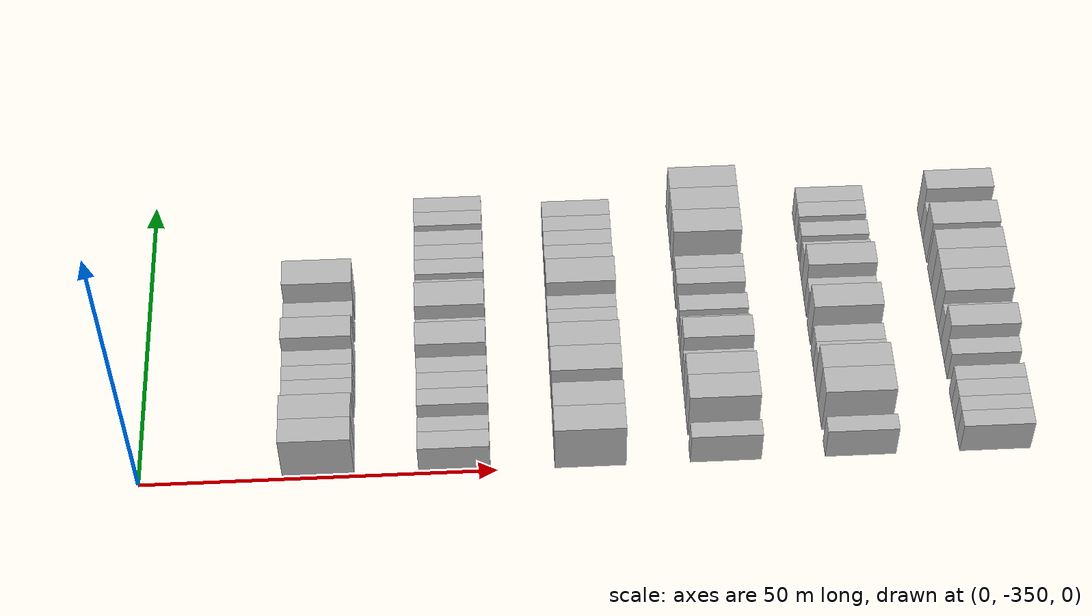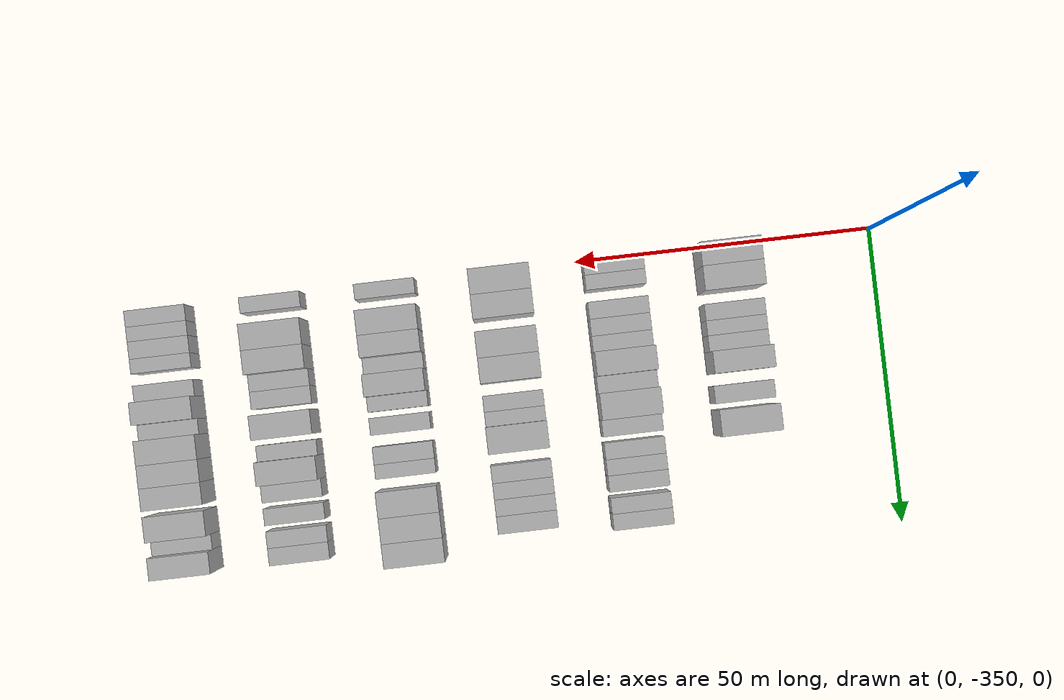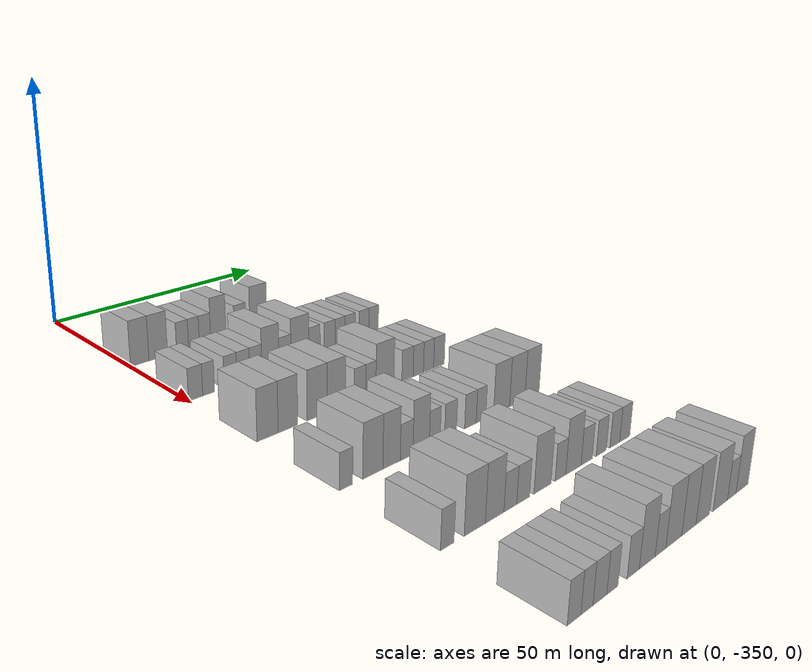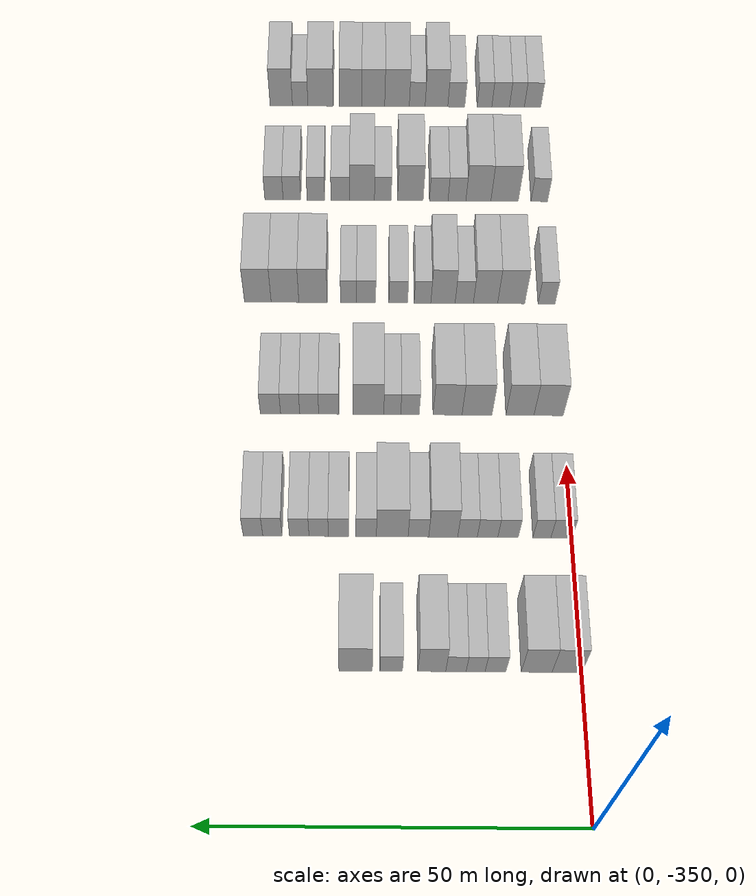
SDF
<sdf version="1.6">
 <world name="default">
  <model name="building_1">
   <static>1</static>
   <pose>25.0000 -348.0444 0 0.000000 0.000000 0.000000</pose>
   <link name="link">
    <pose>0 0 4.50 0 0 0</pose>
    <collision name="collision"><geometry><box><size>10.0000 3.9112 9.0000</size></box></geometry></collision>
    <visual name="visual">
     <cast_shadows>0</cast_shadows>
     <geometry><box><size>10.0000 3.9112 9.0000</size></box></geometry>
     <material>
      <script>
       <uri>model://HANNAS_wall/materials/scripts</uri>
       <uri>model://HANNAS_wall/materials/textures</uri>
       <name>vrc/HANNAS_wall</name>
      </script>
     </material>
    </visual>
   </link>
  </model>
  <model name="building_2">
   <static>1</static>
   <pose>25.0000 -344.0613 0 0.000000 0.000000 0.000000</pose>
   <link name="link">
    <pose>0 0 4.50 0 0 0</pose>
    <collision name="collision"><geometry><box><size>10.0000 4.0550 9.0000</size></box></geometry></collision>
    <visual name="visual">
     <cast_shadows>0</cast_shadows>
     <geometry><box><size>10.0000 4.0550 9.0000</size></box></geometry>
     <material>
      <script>
       <uri>model://HANNAS_wall/materials/scripts</uri>
       <uri>model://HANNAS_wall/materials/textures</uri>
       <name>vrc/HANNAS_wall</name>
      </script>
     </material>
    </visual>
   </link>
  </model>
  <model name="building_3">
   <static>1</static>
   <pose>25.0000 -338.6750 0 0.000000 0.000000 0.000000</pose>
   <link name="link">
    <pose>0 0 3.00 0 0 0</pose>
    <collision name="collision"><geometry><box><size>10.0000 2.7177 6.0000</size></box></geometry></collision>
    <visual name="visual">
     <cast_shadows>0</cast_shadows>
     <geometry><box><size>10.0000 2.7177 6.0000</size></box></geometry>
     <material>
      <script>
       <uri>model://HANNAS_wall/materials/scripts</uri>
       <uri>model://HANNAS_wall/materials/textures</uri>
       <name>vrc/HANNAS_wall</name>
      </script>
     </material>
    </visual>
   </link>
  </model>
  <model name="building_4">
   <static>1</static>
   <pose>25.0000 -336.0749 0 0.000000 0.000000 0.000000</pose>
   <link name="link">
    <pose>0 0 3.00 0 0 0</pose>
    <collision name="collision"><geometry><box><size>10.0000 2.4827 6.0000</size></box></geometry></collision>
    <visual name="visual">
     <cast_shadows>0</cast_shadows>
     <geometry><box><size>10.0000 2.4827 6.0000</size></box></geometry>
     <material>
      <script>
       <uri>model://HANNAS_wall/materials/scripts</uri>
       <uri>model://HANNAS_wall/materials/textures</uri>
       <name>vrc/HANNAS_wall</name>
      </script>
     </material>
    </visual>
   </link>
  </model>
  <model name="building_5">
   <static>1</static>
   <pose>25.0000 -333.5000 0 0.000000 0.000000 0.000000</pose>
   <link name="link">
    <pose>0 0 3.00 0 0 0</pose>
    <collision name="collision"><geometry><box><size>10.0000 2.6671 6.0000</size></box></geometry></collision>
    <visual name="visual">
     <cast_shadows>0</cast_shadows>
     <geometry><box><size>10.0000 2.6671 6.0000</size></box></geometry>
     <material>
      <script>
       <uri>model://HANNAS_wall/materials/scripts</uri>
       <uri>model://HANNAS_wall/materials/textures</uri>
       <name>vrc/HANNAS_wall</name>
      </script>
     </material>
    </visual>
   </link>
  </model>
  <model name="building_6">
   <static>1</static>
   <pose>25.0000 -330.3314 0 0.000000 0.000000 0.000000</pose>
   <link name="link">
    <pose>0 0 4.50 0 0 0</pose>
    <collision name="collision"><geometry><box><size>10.0000 3.6700 9.0000</size></box></geometry></collision>
    <visual name="visual">
     <cast_shadows>0</cast_shadows>
     <geometry><box><size>10.0000 3.6700 9.0000</size></box></geometry>
     <material>
      <script>
       <uri>model://HANNAS_wall/materials/scripts</uri>
       <uri>model://HANNAS_wall/materials/textures</uri>
       <name>vrc/HANNAS_wall</name>
      </script>
     </material>
    </visual>
   </link>
  </model>
  <model name="building_7">
   <static>1</static>
   <pose>25.0000 -325.0268 0 0.000000 0.000000 0.000000</pose>
   <link name="link">
    <pose>0 0 3.00 0 0 0</pose>
    <collision name="collision"><geometry><box><size>10.0000 2.9393 6.0000</size></box></geometry></collision>
    <visual name="visual">
     <cast_shadows>0</cast_shadows>
     <geometry><box><size>10.0000 2.9393 6.0000</size></box></geometry>
     <material>
      <script>
       <uri>model://HANNAS_wall/materials/scripts</uri>
       <uri>model://HANNAS_wall/materials/textures</uri>
       <name>vrc/HANNAS_wall</name>
      </script>
     </material>
    </visual>
   </link>
  </model>
  <model name="building_8">
   <static>1</static>
   <pose>25.0000 -320.3669 0 0.000000 0.000000 0.000000</pose>
   <link name="link">
    <pose>0 0 4.50 0 0 0</pose>
    <collision name="collision"><geometry><box><size>10.0000 4.3804 9.0000</size></box></geometry></collision>
    <visual name="visual">
     <cast_shadows>0</cast_shadows>
     <geometry><box><size>10.0000 4.3804 9.0000</size></box></geometry>
     <material>
      <script>
       <uri>model://HANNAS_wall/materials/scripts</uri>
       <uri>model://HANNAS_wall/materials/textures</uri>
       <name>vrc/HANNAS_wall</name>
      </script>
     </material>
    </visual>
   </link>
  </model>
  <model name="building_176">
   <static>1</static>
   <pose>44.0000 -348.5429 0 0.000000 0.000000 0.000000</pose>
   <link name="link">
    <pose>0 0 3.00 0 0 0</pose>
    <collision name="collision"><geometry><box><size>10.0000 2.9143 6.0000</size></box></geometry></collision>
    <visual name="visual">
     <cast_shadows>0</cast_shadows>
     <geometry><box><size>10.0000 2.9143 6.0000</size></box></geometry>
     <material>
      <script>
       <uri>model://HANNAS_wall/materials/scripts</uri>
       <uri>model://HANNAS_wall/materials/textures</uri>
       <name>vrc/HANNAS_wall</name>
      </script>
     </material>
    </visual>
   </link>
  </model>
  <model name="building_177">
   <static>1</static>
   <pose>44.0000 -345.8422 0 0.000000 0.000000 0.000000</pose>
   <link name="link">
    <pose>0 0 3.00 0 0 0</pose>
    <collision name="collision"><geometry><box><size>10.0000 2.4870 6.0000</size></box></geometry></collision>
    <visual name="visual">
     <cast_shadows>0</cast_shadows>
     <geometry><box><size>10.0000 2.4870 6.0000</size></box></geometry>
     <material>
      <script>
       <uri>model://HANNAS_wall/materials/scripts</uri>
       <uri>model://HANNAS_wall/materials/textures</uri>
       <name>vrc/HANNAS_wall</name>
      </script>
     </material>
    </visual>
   </link>
  </model>
  <model name="building_178">
   <static>1</static>
   <pose>44.0000 -341.1885 0 0.000000 0.000000 0.000000</pose>
   <link name="link">
    <pose>0 0 3.00 0 0 0</pose>
    <collision name="collision"><geometry><box><size>10.0000 2.8203 6.0000</size></box></geometry></collision>
    <visual name="visual">
     <cast_shadows>0</cast_shadows>
     <geometry><box><size>10.0000 2.8203 6.0000</size></box></geometry>
     <material>
      <script>
       <uri>model://HANNAS_wall/materials/scripts</uri>
       <uri>model://HANNAS_wall/materials/textures</uri>
       <name>vrc/HANNAS_wall</name>
      </script>
     </material>
    </visual>
   </link>
  </model>
  <model name="building_179">
   <static>1</static>
   <pose>44.0000 -338.3701 0 0.000000 0.000000 0.000000</pose>
   <link name="link">
    <pose>0 0 3.00 0 0 0</pose>
    <collision name="collision"><geometry><box><size>10.0000 2.8165 6.0000</size></box></geometry></collision>
    <visual name="visual">
     <cast_shadows>0</cast_shadows>
     <geometry><box><size>10.0000 2.8165 6.0000</size></box></geometry>
     <material>
      <script>
       <uri>model://HANNAS_wall/materials/scripts</uri>
       <uri>model://HANNAS_wall/materials/textures</uri>
       <name>vrc/HANNAS_wall</name>
      </script>
     </material>
    </visual>
   </link>
  </model>
  <model name="building_180">
   <static>1</static>
   <pose>44.0000 -335.6150 0 0.000000 0.000000 0.000000</pose>
   <link name="link">
    <pose>0 0 3.00 0 0 0</pose>
    <collision name="collision"><geometry><box><size>10.0000 2.6939 6.0000</size></box></geometry></collision>
    <visual name="visual">
     <cast_shadows>0</cast_shadows>
     <geometry><box><size>10.0000 2.6939 6.0000</size></box></geometry>
     <material>
      <script>
       <uri>model://HANNAS_wall/materials/scripts</uri>
       <uri>model://HANNAS_wall/materials/textures</uri>
       <name>vrc/HANNAS_wall</name>
      </script>
     </material>
    </visual>
   </link>
  </model>
  <model name="building_181">
   <static>1</static>
   <pose>44.0000 -332.2743 0 0.000000 0.000000 0.000000</pose>
   <link name="link">
    <pose>0 0 4.50 0 0 0</pose>
    <collision name="collision"><geometry><box><size>10.0000 3.9874 9.0000</size></box></geometry></collision>
    <visual name="visual">
     <cast_shadows>0</cast_shadows>
     <geometry><box><size>10.0000 3.9874 9.0000</size></box></geometry>
     <material>
      <script>
       <uri>model://HANNAS_wall/materials/scripts</uri>
       <uri>model://HANNAS_wall/materials/textures</uri>
       <name>vrc/HANNAS_wall</name>
      </script>
     </material>
    </visual>
   </link>
  </model>
  <model name="building_182">
   <static>1</static>
   <pose>44.0000 -328.8659 0 0.000000 0.000000 0.000000</pose>
   <link name="link">
    <pose>0 0 3.00 0 0 0</pose>
    <collision name="collision"><geometry><box><size>10.0000 2.8293 6.0000</size></box></geometry></collision>
    <visual name="visual">
     <cast_shadows>0</cast_shadows>
     <geometry><box><size>10.0000 2.8293 6.0000</size></box></geometry>
     <material>
      <script>
       <uri>model://HANNAS_wall/materials/scripts</uri>
       <uri>model://HANNAS_wall/materials/textures</uri>
       <name>vrc/HANNAS_wall</name>
      </script>
     </material>
    </visual>
   </link>
  </model>
  <model name="building_183">
   <static>1</static>
   <pose>44.0000 -325.2651 0 0.000000 0.000000 0.000000</pose>
   <link name="link">
    <pose>0 0 4.50 0 0 0</pose>
    <collision name="collision"><geometry><box><size>10.0000 4.3725 9.0000</size></box></geometry></collision>
    <visual name="visual">
     <cast_shadows>0</cast_shadows>
     <geometry><box><size>10.0000 4.3725 9.0000</size></box></geometry>
     <material>
      <script>
       <uri>model://HANNAS_wall/materials/scripts</uri>
       <uri>model://HANNAS_wall/materials/textures</uri>
       <name>vrc/HANNAS_wall</name>
      </script>
     </material>
    </visual>
   </link>
  </model>
  <model name="building_184">
   <static>1</static>
   <pose>44.0000 -321.6777 0 0.000000 0.000000 0.000000</pose>
   <link name="link">
    <pose>0 0 3.00 0 0 0</pose>
    <collision name="collision"><geometry><box><size>10.0000 2.8022 6.0000</size></box></geometry></collision>
    <visual name="visual">
     <cast_shadows>0</cast_shadows>
     <geometry><box><size>10.0000 2.8022 6.0000</size></box></geometry>
     <material>
      <script>
       <uri>model://HANNAS_wall/materials/scripts</uri>
       <uri>model://HANNAS_wall/materials/textures</uri>
       <name>vrc/HANNAS_wall</name>
      </script>
     </material>
    </visual>
   </link>
  </model>
  <model name="building_185">
   <static>1</static>
   <pose>44.0000 -317.8862 0 0.000000 0.000000 0.000000</pose>
   <link name="link">
    <pose>0 0 3.00 0 0 0</pose>
    <collision name="collision"><geometry><box><size>10.0000 2.7808 6.0000</size></box></geometry></collision>
    <visual name="visual">
     <cast_shadows>0</cast_shadows>
     <geometry><box><size>10.0000 2.7808 6.0000</size></box></geometry>
     <material>
      <script>
       <uri>model://HANNAS_wall/materials/scripts</uri>
       <uri>model://HANNAS_wall/materials/textures</uri>
       <name>vrc/HANNAS_wall</name>
      </script>
     </material>
    </visual>
   </link>
  </model>
  <model name="building_186">
   <static>1</static>
   <pose>44.0000 -315.1603 0 0.000000 0.000000 0.000000</pose>
   <link name="link">
    <pose>0 0 3.00 0 0 0</pose>
    <collision name="collision"><geometry><box><size>10.0000 2.6709 6.0000</size></box></geometry></collision>
    <visual name="visual">
     <cast_shadows>0</cast_shadows>
     <geometry><box><size>10.0000 2.6709 6.0000</size></box></geometry>
     <material>
      <script>
       <uri>model://HANNAS_wall/materials/scripts</uri>
       <uri>model://HANNAS_wall/materials/textures</uri>
       <name>vrc/HANNAS_wall</name>
      </script>
     </material>
    </visual>
   </link>
  </model>
  <model name="building_187">
   <static>1</static>
   <pose>44.0000 -312.4803 0 0.000000 0.000000 0.000000</pose>
   <link name="link">
    <pose>0 0 3.00 0 0 0</pose>
    <collision name="collision"><geometry><box><size>10.0000 2.6891 6.0000</size></box></geometry></collision>
    <visual name="visual">
     <cast_shadows>0</cast_shadows>
     <geometry><box><size>10.0000 2.6891 6.0000</size></box></geometry>
     <material>
      <script>
       <uri>model://HANNAS_wall/materials/scripts</uri>
       <uri>model://HANNAS_wall/materials/textures</uri>
       <name>vrc/HANNAS_wall</name>
      </script>
     </material>
    </visual>
   </link>
  </model>
  <model name="building_188">
   <static>1</static>
   <pose>44.0000 -308.8038 0 0.000000 0.000000 0.000000</pose>
   <link name="link">
    <pose>0 0 3.00 0 0 0</pose>
    <collision name="collision"><geometry><box><size>10.0000 2.6638 6.0000</size></box></geometry></collision>
    <visual name="visual">
     <cast_shadows>0</cast_shadows>
     <geometry><box><size>10.0000 2.6638 6.0000</size></box></geometry>
     <material>
      <script>
       <uri>model://HANNAS_wall/materials/scripts</uri>
       <uri>model://HANNAS_wall/materials/textures</uri>
       <name>vrc/HANNAS_wall</name>
      </script>
     </material>
    </visual>
   </link>
  </model>
  <model name="building_189">
   <static>1</static>
   <pose>44.0000 -306.1226 0 0.000000 0.000000 0.000000</pose>
   <link name="link">
    <pose>0 0 3.00 0 0 0</pose>
    <collision name="collision"><geometry><box><size>10.0000 2.6987 6.0000</size></box></geometry></collision>
    <visual name="visual">
     <cast_shadows>0</cast_shadows>
     <geometry><box><size>10.0000 2.6987 6.0000</size></box></geometry>
     <material>
      <script>
       <uri>model://HANNAS_wall/materials/scripts</uri>
       <uri>model://HANNAS_wall/materials/textures</uri>
       <name>vrc/HANNAS_wall</name>
      </script>
     </material>
    </visual>
   </link>
  </model>
  <model name="building_360">
   <static>1</static>
   <pose>63.0000 -347.8915 0 0.000000 0.000000 0.000000</pose>
   <link name="link">
    <pose>0 0 4.50 0 0 0</pose>
    <collision name="collision"><geometry><box><size>10.0000 4.2170 9.0000</size></box></geometry></collision>
    <visual name="visual">
     <cast_shadows>0</cast_shadows>
     <geometry><box><size>10.0000 4.2170 9.0000</size></box></geometry>
     <material>
      <script>
       <uri>model://HANNAS_wall/materials/scripts</uri>
       <uri>model://HANNAS_wall/materials/textures</uri>
       <name>vrc/HANNAS_wall</name>
      </script>
     </material>
    </visual>
   </link>
  </model>
  <model name="building_361">
   <static>1</static>
   <pose>63.0000 -343.7668 0 0.000000 0.000000 0.000000</pose>
   <link name="link">
    <pose>0 0 4.50 0 0 0</pose>
    <collision name="collision"><geometry><box><size>10.0000 4.0324 9.0000</size></box></geometry></collision>
    <visual name="visual">
     <cast_shadows>0</cast_shadows>
     <geometry><box><size>10.0000 4.0324 9.0000</size></box></geometry>
     <material>
      <script>
       <uri>model://HANNAS_wall/materials/scripts</uri>
       <uri>model://HANNAS_wall/materials/textures</uri>
       <name>vrc/HANNAS_wall</name>
      </script>
     </material>
    </visual>
   </link>
  </model>
  <model name="building_362">
   <static>1</static>
   <pose>63.0000 -337.5872 0 0.000000 0.000000 0.000000</pose>
   <link name="link">
    <pose>0 0 4.50 0 0 0</pose>
    <collision name="collision"><geometry><box><size>10.0000 4.3268 9.0000</size></box></geometry></collision>
    <visual name="visual">
     <cast_shadows>0</cast_shadows>
     <geometry><box><size>10.0000 4.3268 9.0000</size></box></geometry>
     <material>
      <script>
       <uri>model://HANNAS_wall/materials/scripts</uri>
       <uri>model://HANNAS_wall/materials/textures</uri>
       <name>vrc/HANNAS_wall</name>
      </script>
     </material>
    </visual>
   </link>
  </model>
  <model name="building_363">
   <static>1</static>
   <pose>63.0000 -333.3351 0 0.000000 0.000000 0.000000</pose>
   <link name="link">
    <pose>0 0 4.50 0 0 0</pose>
    <collision name="collision"><geometry><box><size>10.0000 4.1774 9.0000</size></box></geometry></collision>
    <visual name="visual">
     <cast_shadows>0</cast_shadows>
     <geometry><box><size>10.0000 4.1774 9.0000</size></box></geometry>
     <material>
      <script>
       <uri>model://HANNAS_wall/materials/scripts</uri>
       <uri>model://HANNAS_wall/materials/textures</uri>
       <name>vrc/HANNAS_wall</name>
      </script>
     </material>
    </visual>
   </link>
  </model>
  <model name="building_364">
   <static>1</static>
   <pose>63.0000 -327.9137 0 0.000000 0.000000 0.000000</pose>
   <link name="link">
    <pose>0 0 3.00 0 0 0</pose>
    <collision name="collision"><geometry><box><size>10.0000 2.6655 6.0000</size></box></geometry></collision>
    <visual name="visual">
     <cast_shadows>0</cast_shadows>
     <geometry><box><size>10.0000 2.6655 6.0000</size></box></geometry>
     <material>
      <script>
       <uri>model://HANNAS_wall/materials/scripts</uri>
       <uri>model://HANNAS_wall/materials/textures</uri>
       <name>vrc/HANNAS_wall</name>
      </script>
     </material>
    </visual>
   </link>
  </model>
  <model name="building_365">
   <static>1</static>
   <pose>63.0000 -325.3591 0 0.000000 0.000000 0.000000</pose>
   <link name="link">
    <pose>0 0 3.00 0 0 0</pose>
    <collision name="collision"><geometry><box><size>10.0000 2.4436 6.0000</size></box></geometry></collision>
    <visual name="visual">
     <cast_shadows>0</cast_shadows>
     <geometry><box><size>10.0000 2.4436 6.0000</size></box></geometry>
     <material>
      <script>
       <uri>model://HANNAS_wall/materials/scripts</uri>
       <uri>model://HANNAS_wall/materials/textures</uri>
       <name>vrc/HANNAS_wall</name>
      </script>
     </material>
    </visual>
   </link>
  </model>
  <model name="building_366">
   <static>1</static>
   <pose>63.0000 -321.9104 0 0.000000 0.000000 0.000000</pose>
   <link name="link">
    <pose>0 0 4.50 0 0 0</pose>
    <collision name="collision"><geometry><box><size>10.0000 4.4539 9.0000</size></box></geometry></collision>
    <visual name="visual">
     <cast_shadows>0</cast_shadows>
     <geometry><box><size>10.0000 4.4539 9.0000</size></box></geometry>
     <material>
      <script>
       <uri>model://HANNAS_wall/materials/scripts</uri>
       <uri>model://HANNAS_wall/materials/textures</uri>
       <name>vrc/HANNAS_wall</name>
      </script>
     </material>
    </visual>
   </link>
  </model>
  <model name="building_367">
   <static>1</static>
   <pose>63.0000 -316.2302 0 0.000000 0.000000 0.000000</pose>
   <link name="link">
    <pose>0 0 3.00 0 0 0</pose>
    <collision name="collision"><geometry><box><size>10.0000 2.9065 6.0000</size></box></geometry></collision>
    <visual name="visual">
     <cast_shadows>0</cast_shadows>
     <geometry><box><size>10.0000 2.9065 6.0000</size></box></geometry>
     <material>
      <script>
       <uri>model://HANNAS_wall/materials/scripts</uri>
       <uri>model://HANNAS_wall/materials/textures</uri>
       <name>vrc/HANNAS_wall</name>
      </script>
     </material>
    </visual>
   </link>
  </model>
  <model name="building_368">
   <static>1</static>
   <pose>63.0000 -313.4119 0 0.000000 0.000000 0.000000</pose>
   <link name="link">
    <pose>0 0 3.00 0 0 0</pose>
    <collision name="collision"><geometry><box><size>10.0000 2.7301 6.0000</size></box></geometry></collision>
    <visual name="visual">
     <cast_shadows>0</cast_shadows>
     <geometry><box><size>10.0000 2.7301 6.0000</size></box></geometry>
     <material>
      <script>
       <uri>model://HANNAS_wall/materials/scripts</uri>
       <uri>model://HANNAS_wall/materials/textures</uri>
       <name>vrc/HANNAS_wall</name>
      </script>
     </material>
    </visual>
   </link>
  </model>
  <model name="building_369">
   <static>1</static>
   <pose>63.0000 -310.6686 0 0.000000 0.000000 0.000000</pose>
   <link name="link">
    <pose>0 0 3.00 0 0 0</pose>
    <collision name="collision"><geometry><box><size>10.0000 2.7565 6.0000</size></box></geometry></collision>
    <visual name="visual">
     <cast_shadows>0</cast_shadows>
     <geometry><box><size>10.0000 2.7565 6.0000</size></box></geometry>
     <material>
      <script>
       <uri>model://HANNAS_wall/materials/scripts</uri>
       <uri>model://HANNAS_wall/materials/textures</uri>
       <name>vrc/HANNAS_wall</name>
      </script>
     </material>
    </visual>
   </link>
  </model>
  <model name="building_370">
   <static>1</static>
   <pose>63.0000 -307.8311 0 0.000000 0.000000 0.000000</pose>
   <link name="link">
    <pose>0 0 3.00 0 0 0</pose>
    <collision name="collision"><geometry><box><size>10.0000 2.9185 6.0000</size></box></geometry></collision>
    <visual name="visual">
     <cast_shadows>0</cast_shadows>
     <geometry><box><size>10.0000 2.9185 6.0000</size></box></geometry>
     <material>
      <script>
       <uri>model://HANNAS_wall/materials/scripts</uri>
       <uri>model://HANNAS_wall/materials/textures</uri>
       <name>vrc/HANNAS_wall</name>
      </script>
     </material>
    </visual>
   </link>
  </model>
  <model name="building_529">
   <static>1</static>
   <pose>82.0000 -348.7175 0 0.000000 0.000000 0.000000</pose>
   <link name="link">
    <pose>0 0 3.00 0 0 0</pose>
    <collision name="collision"><geometry><box><size>10.0000 2.5650 6.0000</size></box></geometry></collision>
    <visual name="visual">
     <cast_shadows>0</cast_shadows>
     <geometry><box><size>10.0000 2.5650 6.0000</size></box></geometry>
     <material>
      <script>
       <uri>model://HANNAS_wall/materials/scripts</uri>
       <uri>model://HANNAS_wall/materials/textures</uri>
       <name>vrc/HANNAS_wall</name>
      </script>
     </material>
    </visual>
   </link>
  </model>
  <model name="building_530">
   <static>1</static>
   <pose>82.0000 -343.3906 0 0.000000 0.000000 0.000000</pose>
   <link name="link">
    <pose>0 0 4.50 0 0 0</pose>
    <collision name="collision"><geometry><box><size>10.0000 4.0888 9.0000</size></box></geometry></collision>
    <visual name="visual">
     <cast_shadows>0</cast_shadows>
     <geometry><box><size>10.0000 4.0888 9.0000</size></box></geometry>
     <material>
      <script>
       <uri>model://HANNAS_wall/materials/scripts</uri>
       <uri>model://HANNAS_wall/materials/textures</uri>
       <name>vrc/HANNAS_wall</name>
      </script>
     </material>
    </visual>
   </link>
  </model>
  <model name="building_531">
   <static>1</static>
   <pose>82.0000 -339.5211 0 0.000000 0.000000 0.000000</pose>
   <link name="link">
    <pose>0 0 4.50 0 0 0</pose>
    <collision name="collision"><geometry><box><size>10.0000 3.6501 9.0000</size></box></geometry></collision>
    <visual name="visual">
     <cast_shadows>0</cast_shadows>
     <geometry><box><size>10.0000 3.6501 9.0000</size></box></geometry>
     <material>
      <script>
       <uri>model://HANNAS_wall/materials/scripts</uri>
       <uri>model://HANNAS_wall/materials/textures</uri>
       <name>vrc/HANNAS_wall</name>
      </script>
     </material>
    </visual>
   </link>
  </model>
  <model name="building_532">
   <static>1</static>
   <pose>82.0000 -336.3214 0 0.000000 0.000000 0.000000</pose>
   <link name="link">
    <pose>0 0 3.00 0 0 0</pose>
    <collision name="collision"><geometry><box><size>10.0000 2.7491 6.0000</size></box></geometry></collision>
    <visual name="visual">
     <cast_shadows>0</cast_shadows>
     <geometry><box><size>10.0000 2.7491 6.0000</size></box></geometry>
     <material>
      <script>
       <uri>model://HANNAS_wall/materials/scripts</uri>
       <uri>model://HANNAS_wall/materials/textures</uri>
       <name>vrc/HANNAS_wall</name>
      </script>
     </material>
    </visual>
   </link>
  </model>
  <model name="building_533">
   <static>1</static>
   <pose>82.0000 -333.1180 0 0.000000 0.000000 0.000000</pose>
   <link name="link">
    <pose>0 0 4.50 0 0 0</pose>
    <collision name="collision"><geometry><box><size>10.0000 3.6577 9.0000</size></box></geometry></collision>
    <visual name="visual">
     <cast_shadows>0</cast_shadows>
     <geometry><box><size>10.0000 3.6577 9.0000</size></box></geometry>
     <material>
      <script>
       <uri>model://HANNAS_wall/materials/scripts</uri>
       <uri>model://HANNAS_wall/materials/textures</uri>
       <name>vrc/HANNAS_wall</name>
      </script>
     </material>
    </visual>
   </link>
  </model>
  <model name="building_534">
   <static>1</static>
   <pose>82.0000 -330.0355 0 0.000000 0.000000 0.000000</pose>
   <link name="link">
    <pose>0 0 3.00 0 0 0</pose>
    <collision name="collision"><geometry><box><size>10.0000 2.5074 6.0000</size></box></geometry></collision>
    <visual name="visual">
     <cast_shadows>0</cast_shadows>
     <geometry><box><size>10.0000 2.5074 6.0000</size></box></geometry>
     <material>
      <script>
       <uri>model://HANNAS_wall/materials/scripts</uri>
       <uri>model://HANNAS_wall/materials/textures</uri>
       <name>vrc/HANNAS_wall</name>
      </script>
     </material>
    </visual>
   </link>
  </model>
  <model name="building_535">
   <static>1</static>
   <pose>82.0000 -326.3739 0 0.000000 0.000000 0.000000</pose>
   <link name="link">
    <pose>0 0 3.00 0 0 0</pose>
    <collision name="collision"><geometry><box><size>10.0000 2.8157 6.0000</size></box></geometry></collision>
    <visual name="visual">
     <cast_shadows>0</cast_shadows>
     <geometry><box><size>10.0000 2.8157 6.0000</size></box></geometry>
     <material>
      <script>
       <uri>model://HANNAS_wall/materials/scripts</uri>
       <uri>model://HANNAS_wall/materials/textures</uri>
       <name>vrc/HANNAS_wall</name>
      </script>
     </material>
    </visual>
   </link>
  </model>
  <model name="building_536">
   <static>1</static>
   <pose>82.0000 -321.5276 0 0.000000 0.000000 0.000000</pose>
   <link name="link">
    <pose>0 0 3.00 0 0 0</pose>
    <collision name="collision"><geometry><box><size>10.0000 2.8768 6.0000</size></box></geometry></collision>
    <visual name="visual">
     <cast_shadows>0</cast_shadows>
     <geometry><box><size>10.0000 2.8768 6.0000</size></box></geometry>
     <material>
      <script>
       <uri>model://HANNAS_wall/materials/scripts</uri>
       <uri>model://HANNAS_wall/materials/textures</uri>
       <name>vrc/HANNAS_wall</name>
      </script>
     </material>
    </visual>
   </link>
  </model>
  <model name="building_537">
   <static>1</static>
   <pose>82.0000 -318.8866 0 0.000000 0.000000 0.000000</pose>
   <link name="link">
    <pose>0 0 3.00 0 0 0</pose>
    <collision name="collision"><geometry><box><size>10.0000 2.4051 6.0000</size></box></geometry></collision>
    <visual name="visual">
     <cast_shadows>0</cast_shadows>
     <geometry><box><size>10.0000 2.4051 6.0000</size></box></geometry>
     <material>
      <script>
       <uri>model://HANNAS_wall/materials/scripts</uri>
       <uri>model://HANNAS_wall/materials/textures</uri>
       <name>vrc/HANNAS_wall</name>
      </script>
     </material>
    </visual>
   </link>
  </model>
  <model name="building_538">
   <static>1</static>
   <pose>82.0000 -313.5486 0 0.000000 0.000000 0.000000</pose>
   <link name="link">
    <pose>0 0 4.50 0 0 0</pose>
    <collision name="collision"><geometry><box><size>10.0000 4.2709 9.0000</size></box></geometry></collision>
    <visual name="visual">
     <cast_shadows>0</cast_shadows>
     <geometry><box><size>10.0000 4.2709 9.0000</size></box></geometry>
     <material>
      <script>
       <uri>model://HANNAS_wall/materials/scripts</uri>
       <uri>model://HANNAS_wall/materials/textures</uri>
       <name>vrc/HANNAS_wall</name>
      </script>
     </material>
    </visual>
   </link>
  </model>
  <model name="building_539">
   <static>1</static>
   <pose>82.0000 -309.3248 0 0.000000 0.000000 0.000000</pose>
   <link name="link">
    <pose>0 0 4.50 0 0 0</pose>
    <collision name="collision"><geometry><box><size>10.0000 4.1768 9.0000</size></box></geometry></collision>
    <visual name="visual">
     <cast_shadows>0</cast_shadows>
     <geometry><box><size>10.0000 4.1768 9.0000</size></box></geometry>
     <material>
      <script>
       <uri>model://HANNAS_wall/materials/scripts</uri>
       <uri>model://HANNAS_wall/materials/textures</uri>
       <name>vrc/HANNAS_wall</name>
      </script>
     </material>
    </visual>
   </link>
  </model>
  <model name="building_540">
   <static>1</static>
   <pose>82.0000 -305.2306 0 0.000000 0.000000 0.000000</pose>
   <link name="link">
    <pose>0 0 4.50 0 0 0</pose>
    <collision name="collision"><geometry><box><size>10.0000 4.0117 9.0000</size></box></geometry></collision>
    <visual name="visual">
     <cast_shadows>0</cast_shadows>
     <geometry><box><size>10.0000 4.0117 9.0000</size></box></geometry>
     <material>
      <script>
       <uri>model://HANNAS_wall/materials/scripts</uri>
       <uri>model://HANNAS_wall/materials/textures</uri>
       <name>vrc/HANNAS_wall</name>
      </script>
     </material>
    </visual>
   </link>
  </model>
  <model name="building_705">
   <static>1</static>
   <pose>101.0000 -348.6978 0 0.000000 0.000000 0.000000</pose>
   <link name="link">
    <pose>0 0 3.00 0 0 0</pose>
    <collision name="collision"><geometry><box><size>10.0000 2.6044 6.0000</size></box></geometry></collision>
    <visual name="visual">
     <cast_shadows>0</cast_shadows>
     <geometry><box><size>10.0000 2.6044 6.0000</size></box></geometry>
     <material>
      <script>
       <uri>model://HANNAS_wall/materials/scripts</uri>
       <uri>model://HANNAS_wall/materials/textures</uri>
       <name>vrc/HANNAS_wall</name>
      </script>
     </material>
    </visual>
   </link>
  </model>
  <model name="building_706">
   <static>1</static>
   <pose>101.0000 -343.2398 0 0.000000 0.000000 0.000000</pose>
   <link name="link">
    <pose>0 0 4.50 0 0 0</pose>
    <collision name="collision"><geometry><box><size>10.0000 4.3114 9.0000</size></box></geometry></collision>
    <visual name="visual">
     <cast_shadows>0</cast_shadows>
     <geometry><box><size>10.0000 4.3114 9.0000</size></box></geometry>
     <material>
      <script>
       <uri>model://HANNAS_wall/materials/scripts</uri>
       <uri>model://HANNAS_wall/materials/textures</uri>
       <name>vrc/HANNAS_wall</name>
      </script>
     </material>
    </visual>
   </link>
  </model>
  <model name="building_707">
   <static>1</static>
   <pose>101.0000 -339.1160 0 0.000000 0.000000 0.000000</pose>
   <link name="link">
    <pose>0 0 4.50 0 0 0</pose>
    <collision name="collision"><geometry><box><size>10.0000 3.9362 9.0000</size></box></geometry></collision>
    <visual name="visual">
     <cast_shadows>0</cast_shadows>
     <geometry><box><size>10.0000 3.9362 9.0000</size></box></geometry>
     <material>
      <script>
       <uri>model://HANNAS_wall/materials/scripts</uri>
       <uri>model://HANNAS_wall/materials/textures</uri>
       <name>vrc/HANNAS_wall</name>
      </script>
     </material>
    </visual>
   </link>
  </model>
  <model name="building_708">
   <static>1</static>
   <pose>101.0000 -335.7478 0 0.000000 0.000000 0.000000</pose>
   <link name="link">
    <pose>0 0 3.00 0 0 0</pose>
    <collision name="collision"><geometry><box><size>10.0000 2.8003 6.0000</size></box></geometry></collision>
    <visual name="visual">
     <cast_shadows>0</cast_shadows>
     <geometry><box><size>10.0000 2.8003 6.0000</size></box></geometry>
     <material>
      <script>
       <uri>model://HANNAS_wall/materials/scripts</uri>
       <uri>model://HANNAS_wall/materials/textures</uri>
       <name>vrc/HANNAS_wall</name>
      </script>
     </material>
    </visual>
   </link>
  </model>
  <model name="building_709">
   <static>1</static>
   <pose>101.0000 -332.8944 0 0.000000 0.000000 0.000000</pose>
   <link name="link">
    <pose>0 0 3.00 0 0 0</pose>
    <collision name="collision"><geometry><box><size>10.0000 2.9065 6.0000</size></box></geometry></collision>
    <visual name="visual">
     <cast_shadows>0</cast_shadows>
     <geometry><box><size>10.0000 2.9065 6.0000</size></box></geometry>
     <material>
      <script>
       <uri>model://HANNAS_wall/materials/scripts</uri>
       <uri>model://HANNAS_wall/materials/textures</uri>
       <name>vrc/HANNAS_wall</name>
      </script>
     </material>
    </visual>
   </link>
  </model>
  <model name="building_710">
   <static>1</static>
   <pose>101.0000 -328.4260 0 0.000000 0.000000 0.000000</pose>
   <link name="link">
    <pose>0 0 4.50 0 0 0</pose>
    <collision name="collision"><geometry><box><size>10.0000 4.0302 9.0000</size></box></geometry></collision>
    <visual name="visual">
     <cast_shadows>0</cast_shadows>
     <geometry><box><size>10.0000 4.0302 9.0000</size></box></geometry>
     <material>
      <script>
       <uri>model://HANNAS_wall/materials/scripts</uri>
       <uri>model://HANNAS_wall/materials/textures</uri>
       <name>vrc/HANNAS_wall</name>
      </script>
     </material>
    </visual>
   </link>
  </model>
  <model name="building_711">
   <static>1</static>
   <pose>101.0000 -324.0981 0 0.000000 0.000000 0.000000</pose>
   <link name="link">
    <pose>0 0 3.00 0 0 0</pose>
    <collision name="collision"><geometry><box><size>10.0000 2.6257 6.0000</size></box></geometry></collision>
    <visual name="visual">
     <cast_shadows>0</cast_shadows>
     <geometry><box><size>10.0000 2.6257 6.0000</size></box></geometry>
     <material>
      <script>
       <uri>model://HANNAS_wall/materials/scripts</uri>
       <uri>model://HANNAS_wall/materials/textures</uri>
       <name>vrc/HANNAS_wall</name>
      </script>
     </material>
    </visual>
   </link>
  </model>
  <model name="building_712">
   <static>1</static>
   <pose>101.0000 -320.8405 0 0.000000 0.000000 0.000000</pose>
   <link name="link">
    <pose>0 0 4.50 0 0 0</pose>
    <collision name="collision"><geometry><box><size>10.0000 3.8894 9.0000</size></box></geometry></collision>
    <visual name="visual">
     <cast_shadows>0</cast_shadows>
     <geometry><box><size>10.0000 3.8894 9.0000</size></box></geometry>
     <material>
      <script>
       <uri>model://HANNAS_wall/materials/scripts</uri>
       <uri>model://HANNAS_wall/materials/textures</uri>
       <name>vrc/HANNAS_wall</name>
      </script>
     </material>
    </visual>
   </link>
  </model>
  <model name="building_713">
   <static>1</static>
   <pose>101.0000 -317.4321 0 0.000000 0.000000 0.000000</pose>
   <link name="link">
    <pose>0 0 3.00 0 0 0</pose>
    <collision name="collision"><geometry><box><size>10.0000 2.9274 6.0000</size></box></geometry></collision>
    <visual name="visual">
     <cast_shadows>0</cast_shadows>
     <geometry><box><size>10.0000 2.9274 6.0000</size></box></geometry>
     <material>
      <script>
       <uri>model://HANNAS_wall/materials/scripts</uri>
       <uri>model://HANNAS_wall/materials/textures</uri>
       <name>vrc/HANNAS_wall</name>
      </script>
     </material>
    </visual>
   </link>
  </model>
  <model name="building_714">
   <static>1</static>
   <pose>101.0000 -313.5922 0 0.000000 0.000000 0.000000</pose>
   <link name="link">
    <pose>0 0 3.00 0 0 0</pose>
    <collision name="collision"><geometry><box><size>10.0000 2.7524 6.0000</size></box></geometry></collision>
    <visual name="visual">
     <cast_shadows>0</cast_shadows>
     <geometry><box><size>10.0000 2.7524 6.0000</size></box></geometry>
     <material>
      <script>
       <uri>model://HANNAS_wall/materials/scripts</uri>
       <uri>model://HANNAS_wall/materials/textures</uri>
       <name>vrc/HANNAS_wall</name>
      </script>
     </material>
    </visual>
   </link>
  </model>
  <model name="building_715">
   <static>1</static>
   <pose>101.0000 -309.8291 0 0.000000 0.000000 0.000000</pose>
   <link name="link">
    <pose>0 0 3.00 0 0 0</pose>
    <collision name="collision"><geometry><box><size>10.0000 2.7736 6.0000</size></box></geometry></collision>
    <visual name="visual">
     <cast_shadows>0</cast_shadows>
     <geometry><box><size>10.0000 2.7736 6.0000</size></box></geometry>
     <material>
      <script>
       <uri>model://HANNAS_wall/materials/scripts</uri>
       <uri>model://HANNAS_wall/materials/textures</uri>
       <name>vrc/HANNAS_wall</name>
      </script>
     </material>
    </visual>
   </link>
  </model>
  <model name="building_716">
   <static>1</static>
   <pose>101.0000 -307.0047 0 0.000000 0.000000 0.000000</pose>
   <link name="link">
    <pose>0 0 3.00 0 0 0</pose>
    <collision name="collision"><geometry><box><size>10.0000 2.8753 6.0000</size></box></geometry></collision>
    <visual name="visual">
     <cast_shadows>0</cast_shadows>
     <geometry><box><size>10.0000 2.8753 6.0000</size></box></geometry>
     <material>
      <script>
       <uri>model://HANNAS_wall/materials/scripts</uri>
       <uri>model://HANNAS_wall/materials/textures</uri>
       <name>vrc/HANNAS_wall</name>
      </script>
     </material>
    </visual>
   </link>
  </model>
  <model name="building_877">
   <static>1</static>
   <pose>120.0000 -348.6566 0 0.000000 0.000000 0.000000</pose>
   <link name="link">
    <pose>0 0 3.00 0 0 0</pose>
    <collision name="collision"><geometry><box><size>10.0000 2.6868 6.0000</size></box></geometry></collision>
    <visual name="visual">
     <cast_shadows>0</cast_shadows>
     <geometry><box><size>10.0000 2.6868 6.0000</size></box></geometry>
     <material>
      <script>
       <uri>model://HANNAS_wall/materials/scripts</uri>
       <uri>model://HANNAS_wall/materials/textures</uri>
       <name>vrc/HANNAS_wall</name>
      </script>
     </material>
    </visual>
   </link>
  </model>
  <model name="building_878">
   <static>1</static>
   <pose>120.0000 -346.0925 0 0.000000 0.000000 0.000000</pose>
   <link name="link">
    <pose>0 0 3.00 0 0 0</pose>
    <collision name="collision"><geometry><box><size>10.0000 2.4413 6.0000</size></box></geometry></collision>
    <visual name="visual">
     <cast_shadows>0</cast_shadows>
     <geometry><box><size>10.0000 2.4413 6.0000</size></box></geometry>
     <material>
      <script>
       <uri>model://HANNAS_wall/materials/scripts</uri>
       <uri>model://HANNAS_wall/materials/textures</uri>
       <name>vrc/HANNAS_wall</name>
      </script>
     </material>
    </visual>
   </link>
  </model>
  <model name="building_879">
   <static>1</static>
   <pose>120.0000 -343.4318 0 0.000000 0.000000 0.000000</pose>
   <link name="link">
    <pose>0 0 3.00 0 0 0</pose>
    <collision name="collision"><geometry><box><size>10.0000 2.8800 6.0000</size></box></geometry></collision>
    <visual name="visual">
     <cast_shadows>0</cast_shadows>
     <geometry><box><size>10.0000 2.8800 6.0000</size></box></geometry>
     <material>
      <script>
       <uri>model://HANNAS_wall/materials/scripts</uri>
       <uri>model://HANNAS_wall/materials/textures</uri>
       <name>vrc/HANNAS_wall</name>
      </script>
     </material>
    </visual>
   </link>
  </model>
  <model name="building_880">
   <static>1</static>
   <pose>120.0000 -340.7817 0 0.000000 0.000000 0.000000</pose>
   <link name="link">
    <pose>0 0 3.00 0 0 0</pose>
    <collision name="collision"><geometry><box><size>10.0000 2.4202 6.0000</size></box></geometry></collision>
    <visual name="visual">
     <cast_shadows>0</cast_shadows>
     <geometry><box><size>10.0000 2.4202 6.0000</size></box></geometry>
     <material>
      <script>
       <uri>model://HANNAS_wall/materials/scripts</uri>
       <uri>model://HANNAS_wall/materials/textures</uri>
       <name>vrc/HANNAS_wall</name>
      </script>
     </material>
    </visual>
   </link>
  </model>
  <model name="building_881">
   <static>1</static>
   <pose>120.0000 -336.1788 0 0.000000 0.000000 0.000000</pose>
   <link name="link">
    <pose>0 0 3.00 0 0 0</pose>
    <collision name="collision"><geometry><box><size>10.0000 2.7855 6.0000</size></box></geometry></collision>
    <visual name="visual">
     <cast_shadows>0</cast_shadows>
     <geometry><box><size>10.0000 2.7855 6.0000</size></box></geometry>
     <material>
      <script>
       <uri>model://HANNAS_wall/materials/scripts</uri>
       <uri>model://HANNAS_wall/materials/textures</uri>
       <name>vrc/HANNAS_wall</name>
      </script>
     </material>
    </visual>
   </link>
  </model>
  <model name="building_882">
   <static>1</static>
   <pose>120.0000 -332.9260 0 0.000000 0.000000 0.000000</pose>
   <link name="link">
    <pose>0 0 4.50 0 0 0</pose>
    <collision name="collision"><geometry><box><size>10.0000 3.7202 9.0000</size></box></geometry></collision>
    <visual name="visual">
     <cast_shadows>0</cast_shadows>
     <geometry><box><size>10.0000 3.7202 9.0000</size></box></geometry>
     <material>
      <script>
       <uri>model://HANNAS_wall/materials/scripts</uri>
       <uri>model://HANNAS_wall/materials/textures</uri>
       <name>vrc/HANNAS_wall</name>
      </script>
     </material>
    </visual>
   </link>
  </model>
  <model name="building_883">
   <static>1</static>
   <pose>120.0000 -329.7730 0 0.000000 0.000000 0.000000</pose>
   <link name="link">
    <pose>0 0 3.00 0 0 0</pose>
    <collision name="collision"><geometry><box><size>10.0000 2.5859 6.0000</size></box></geometry></collision>
    <visual name="visual">
     <cast_shadows>0</cast_shadows>
     <geometry><box><size>10.0000 2.5859 6.0000</size></box></geometry>
     <material>
      <script>
       <uri>model://HANNAS_wall/materials/scripts</uri>
       <uri>model://HANNAS_wall/materials/textures</uri>
       <name>vrc/HANNAS_wall</name>
      </script>
     </material>
    </visual>
   </link>
  </model>
  <model name="building_884">
   <static>1</static>
   <pose>120.0000 -326.4646 0 0.000000 0.000000 0.000000</pose>
   <link name="link">
    <pose>0 0 4.50 0 0 0</pose>
    <collision name="collision"><geometry><box><size>10.0000 4.0308 9.0000</size></box></geometry></collision>
    <visual name="visual">
     <cast_shadows>0</cast_shadows>
     <geometry><box><size>10.0000 4.0308 9.0000</size></box></geometry>
     <material>
      <script>
       <uri>model://HANNAS_wall/materials/scripts</uri>
       <uri>model://HANNAS_wall/materials/textures</uri>
       <name>vrc/HANNAS_wall</name>
      </script>
     </material>
    </visual>
   </link>
  </model>
  <model name="building_885">
   <static>1</static>
   <pose>120.0000 -322.5786 0 0.000000 0.000000 0.000000</pose>
   <link name="link">
    <pose>0 0 4.50 0 0 0</pose>
    <collision name="collision"><geometry><box><size>10.0000 3.7413 9.0000</size></box></geometry></collision>
    <visual name="visual">
     <cast_shadows>0</cast_shadows>
     <geometry><box><size>10.0000 3.7413 9.0000</size></box></geometry>
     <material>
      <script>
       <uri>model://HANNAS_wall/materials/scripts</uri>
       <uri>model://HANNAS_wall/materials/textures</uri>
       <name>vrc/HANNAS_wall</name>
      </script>
     </material>
    </visual>
   </link>
  </model>
  <model name="building_886">
   <static>1</static>
   <pose>120.0000 -318.8787 0 0.000000 0.000000 0.000000</pose>
   <link name="link">
    <pose>0 0 4.50 0 0 0</pose>
    <collision name="collision"><geometry><box><size>10.0000 3.6584 9.0000</size></box></geometry></collision>
    <visual name="visual">
     <cast_shadows>0</cast_shadows>
     <geometry><box><size>10.0000 3.6584 9.0000</size></box></geometry>
     <material>
      <script>
       <uri>model://HANNAS_wall/materials/scripts</uri>
       <uri>model://HANNAS_wall/materials/textures</uri>
       <name>vrc/HANNAS_wall</name>
      </script>
     </material>
    </visual>
   </link>
  </model>
  <model name="building_887">
   <static>1</static>
   <pose>120.0000 -313.9702 0 0.000000 0.000000 0.000000</pose>
   <link name="link">
    <pose>0 0 4.50 0 0 0</pose>
    <collision name="collision"><geometry><box><size>10.0000 4.1585 9.0000</size></box></geometry></collision>
    <visual name="visual">
     <cast_shadows>0</cast_shadows>
     <geometry><box><size>10.0000 4.1585 9.0000</size></box></geometry>
     <material>
      <script>
       <uri>model://HANNAS_wall/materials/scripts</uri>
       <uri>model://HANNAS_wall/materials/textures</uri>
       <name>vrc/HANNAS_wall</name>
      </script>
     </material>
    </visual>
   </link>
  </model>
  <model name="building_888">
   <static>1</static>
   <pose>120.0000 -310.6205 0 0.000000 0.000000 0.000000</pose>
   <link name="link">
    <pose>0 0 3.00 0 0 0</pose>
    <collision name="collision"><geometry><box><size>10.0000 2.5410 6.0000</size></box></geometry></collision>
    <visual name="visual">
     <cast_shadows>0</cast_shadows>
     <geometry><box><size>10.0000 2.5410 6.0000</size></box></geometry>
     <material>
      <script>
       <uri>model://HANNAS_wall/materials/scripts</uri>
       <uri>model://HANNAS_wall/materials/textures</uri>
       <name>vrc/HANNAS_wall</name>
      </script>
     </material>
    </visual>
   </link>
  </model>
  <model name="building_889">
   <static>1</static>
   <pose>120.0000 -307.5282 0 0.000000 0.000000 0.000000</pose>
   <link name="link">
    <pose>0 0 4.50 0 0 0</pose>
    <collision name="collision"><geometry><box><size>10.0000 3.6436 9.0000</size></box></geometry></collision>
    <visual name="visual">
     <cast_shadows>0</cast_shadows>
     <geometry><box><size>10.0000 3.6436 9.0000</size></box></geometry>
     <material>
      <script>
       <uri>model://HANNAS_wall/materials/scripts</uri>
       <uri>model://HANNAS_wall/materials/textures</uri>
       <name>vrc/HANNAS_wall</name>
      </script>
     </material>
    </visual>
   </link>
  </model>
 </world>
</sdf>
